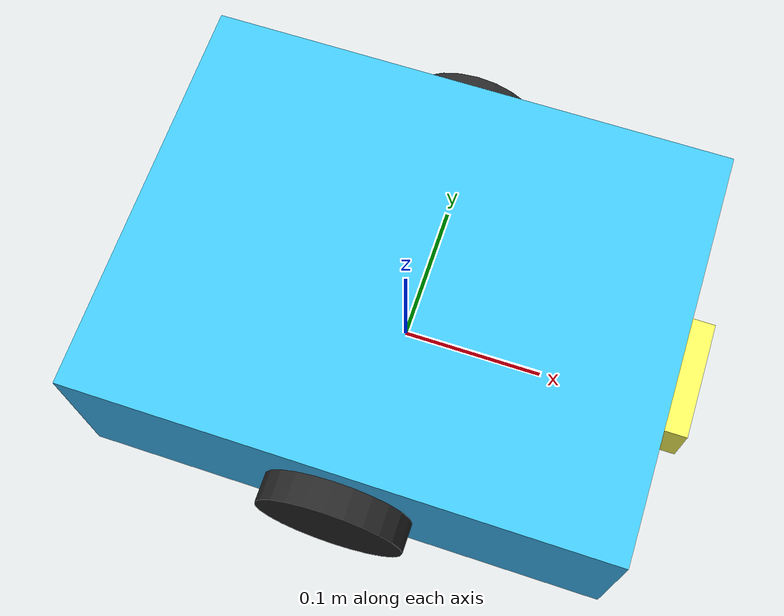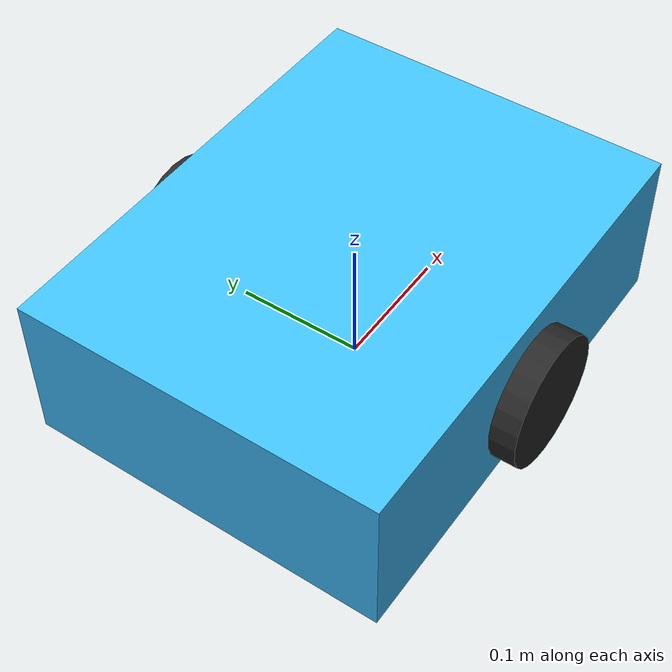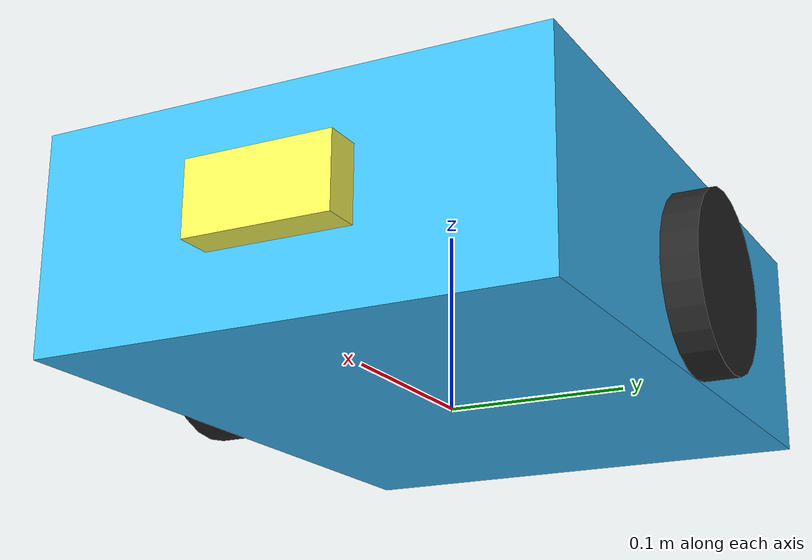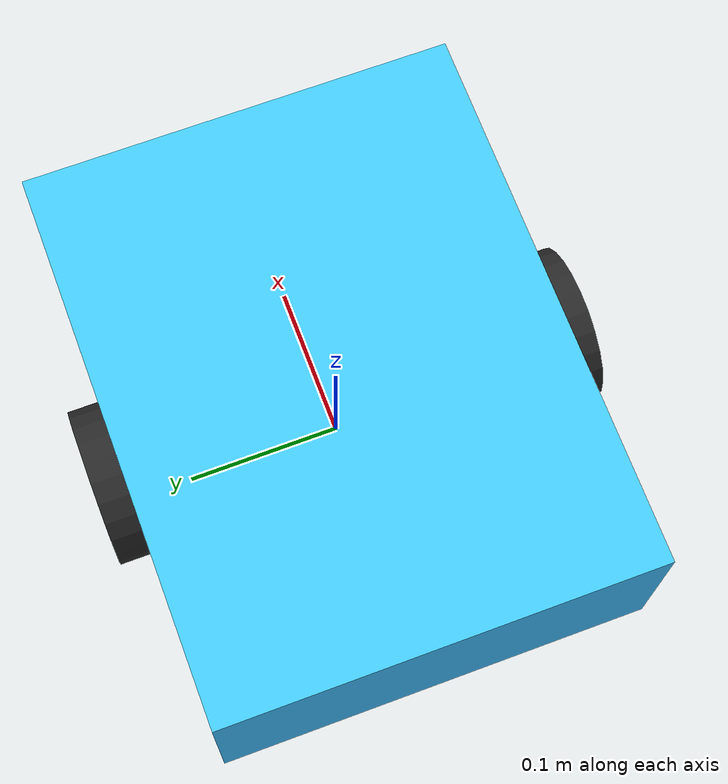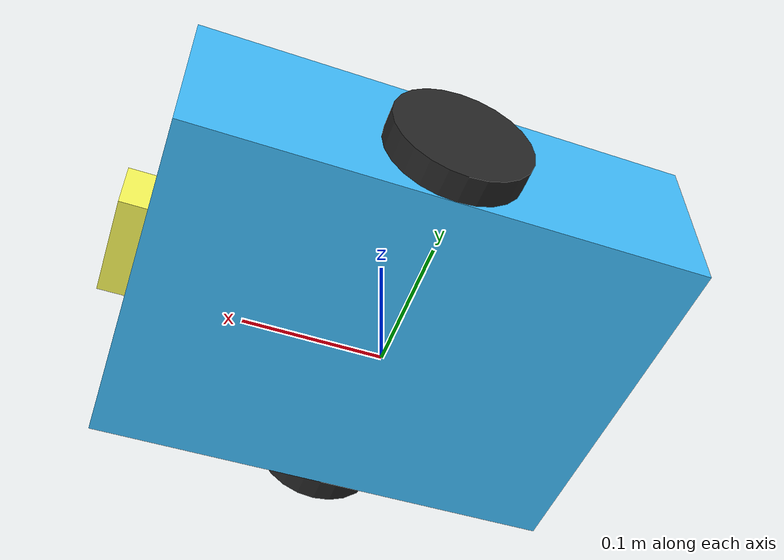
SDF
<?xml version="1.0"?>
<sdf version="1.8">
  <model name="t0_robot">
    <link name="base_link">
      <pose>0 0 0.06 0 0 0</pose>
      <inertial>
        <mass>8.0</mass>
        <inertia>
          <ixx>0.08</ixx><iyy>0.12</iyy><izz>0.14</izz>
        </inertia>
      </inertial>
      <collision name="body">
        <geometry><box><size>0.36 0.28 0.12</size></box></geometry>
      </collision>
      <visual name="body">
        <geometry><box><size>0.36 0.28 0.12</size></box></geometry>
        <material>
          <ambient>0.15 0.55 0.85 1</ambient>
          <diffuse>0.25 0.75 1.0 1</diffuse>
        </material>
      </visual>
      <visual name="nose">
        <pose>0.18 0 0 0 0 0</pose>
        <geometry><box><size>0.04 0.08 0.04</size></box></geometry>
        <material>
          <ambient>0.9 0.9 0.2 1</ambient>
          <diffuse>1 1 0.35 1</diffuse>
        </material>
      </visual>
      <sensor name="lidar" type="gpu_lidar">
        <pose>0.12 0 0.06 0 0 0</pose>
        <topic>scan</topic>
        <gz_frame_id>laser_link</gz_frame_id>
        <update_rate>10</update_rate>
        <lidar>
          <scan>
            <horizontal>
              <samples>720</samples>
              <resolution>1</resolution>
              <min_angle>-3.14159265</min_angle>
              <max_angle>3.14159265</max_angle>
            </horizontal>
          </scan>
          <range>
            <min>0.12</min>
            <max>12.0</max>
            <resolution>0.01</resolution>
          </range>
        </lidar>
        <always_on>1</always_on>
        <visualize>true</visualize>
      </sensor>
    </link>

    <link name="left_wheel">
      <pose>0 0.14 0.05 1.5707 0 0</pose>
      <inertial><mass>0.5</mass></inertial>
      <collision name="collision">
        <geometry><cylinder><radius>0.05</radius><length>0.04</length></cylinder></geometry>
      </collision>
      <visual name="visual">
        <geometry><cylinder><radius>0.05</radius><length>0.04</length></cylinder></geometry>
        <material><ambient>0.1 0.1 0.1 1</ambient><diffuse>0.15 0.15 0.15 1</diffuse></material>
      </visual>
    </link>
    <joint name="left_wheel_joint" type="revolute">
      <parent>base_link</parent><child>left_wheel</child>
      <axis><xyz>0 1 0</xyz></axis>
    </joint>

    <link name="right_wheel">
      <pose>0 -0.14 0.05 1.5707 0 0</pose>
      <inertial><mass>0.5</mass></inertial>
      <collision name="collision">
        <geometry><cylinder><radius>0.05</radius><length>0.04</length></cylinder></geometry>
      </collision>
      <visual name="visual">
        <geometry><cylinder><radius>0.05</radius><length>0.04</length></cylinder></geometry>
        <material><ambient>0.1 0.1 0.1 1</ambient><diffuse>0.15 0.15 0.15 1</diffuse></material>
      </visual>
    </link>
    <joint name="right_wheel_joint" type="revolute">
      <parent>base_link</parent><child>right_wheel</child>
      <axis><xyz>0 1 0</xyz></axis>
    </joint>

    <link name="caster">
      <pose>-0.14 0 0.03 0 0 0</pose>
      <inertial><mass>0.2</mass></inertial>
      <collision name="collision">
        <geometry><sphere><radius>0.03</radius></sphere></geometry>
      </collision>
      <visual name="visual">
        <geometry><sphere><radius>0.03</radius></sphere></geometry>
        <material><ambient>0.2 0.2 0.2 1</ambient><diffuse>0.3 0.3 0.3 1</diffuse></material>
      </visual>
    </link>
    <joint name="caster_joint" type="ball">
      <parent>base_link</parent><child>caster</child>
    </joint>

    <plugin
      filename="libgz-sim-diff-drive-system.so"
      name="gz::sim::systems::DiffDrive">
      <left_joint>left_wheel_joint</left_joint>
      <right_joint>right_wheel_joint</right_joint>
      <wheel_separation>0.28</wheel_separation>
      <wheel_radius>0.05</wheel_radius>
      <topic>/cmd_vel</topic>
      <odom_topic>odom</odom_topic>
      <tf_topic>tf</tf_topic>
      <frame_id>odom</frame_id>
      <child_frame_id>base_link</child_frame_id>
      <publish_odom_tf>true</publish_odom_tf>
      <odom_publish_frequency>30</odom_publish_frequency>
    </plugin>
  </model>
</sdf>
